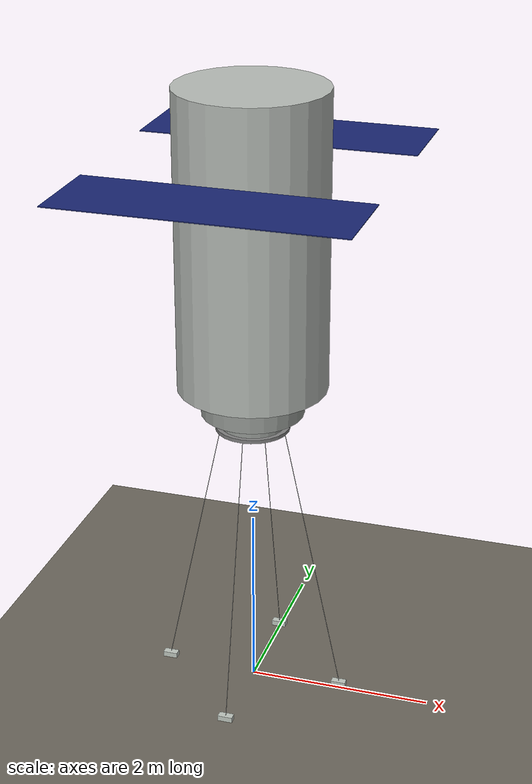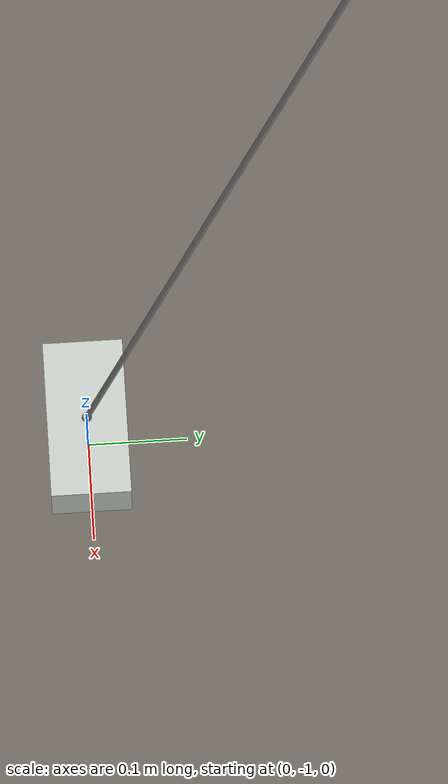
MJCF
<mujoco model="astraant_tethered_landing">

  <compiler angle="degree" coordinate="local"/>
  <option timestep="0.002" gravity="0 0 -9.81">
    <flag contact="enable"/>
  </option>

  <default>
    <geom condim="4" friction="0.6 0.01 0.001"/>
  </default>

  <asset>
    <material name="hull" rgba="0.72 0.74 0.72 1"/>
    <material name="base_cone" rgba="0.60 0.62 0.60 1"/>
    <material name="anchor_ant" rgba="0.75 0.78 0.75 1"/>
    <material name="solar_blue" rgba="0.10 0.15 0.45 1"/>
    <material name="regolith" rgba="0.42 0.40 0.36 1"/>
    <material name="cable" rgba="0.9 0.9 0.2 0.8"/>
  </asset>

  <worldbody>
    <light diffuse="0.9 0.9 0.85" dir="-0.2 -0.3 -1" pos="0 0 10"/>
    <light diffuse="0.3 0.3 0.35" dir="0.5 0.5 -0.3" pos="-5 -5 5"/>

    <!-- Asteroid surface -->
    <geom name="ground" type="plane" size="20 20 0.1"
          material="regolith" friction="0.5 0.01 0.001"
          solref="0.02 0.9" solimp="0.9 0.95 0.001"/>

    <!-- === 4 ANCHOR ANTS (fixed to ground = pre-anchored) === -->
    <!-- Positioned 1.0m out from landing center (wider than mothership) -->
    <body name="anchor_ant_0" pos="1.0 0 0.06">
      <geom name="ant_body_0" type="box" size="0.08 0.04 0.03"
            mass="0.43" material="anchor_ant"
            friction="5.0 0.02 0.005"/>
      <site name="anchor_site_0" pos="0 0 0.03"/>
    </body>

    <body name="anchor_ant_1" pos="0 1.0 0.06">
      <geom name="ant_body_1" type="box" size="0.08 0.04 0.03"
            mass="0.43" material="anchor_ant"
            friction="5.0 0.02 0.005"/>
      <site name="anchor_site_1" pos="0 0 0.03"/>
    </body>

    <body name="anchor_ant_2" pos="-1.0 0 0.06">
      <geom name="ant_body_2" type="box" size="0.08 0.04 0.03"
            mass="0.43" material="anchor_ant"
            friction="5.0 0.02 0.005"/>
      <site name="anchor_site_2" pos="0 0 0.03"/>
    </body>

    <body name="anchor_ant_3" pos="0 -1.0 0.06">
      <geom name="ant_body_3" type="box" size="0.08 0.04 0.03"
            mass="0.43" material="anchor_ant"
            friction="5.0 0.02 0.005"/>
      <site name="anchor_site_3" pos="0 0 0.03"/>
    </body>

    <!-- === MOTHERSHIP (starts 3m above surface) === -->
    <body name="mothership" pos="0 0 4">
      <freejoint name="root"/>
      <camera name="side" pos="6 0 3" xyaxes="0 1 0 -0.3 0 1" mode="track"/>

      <!-- Hull -->
      <geom name="hull" type="cylinder" size="0.8 1.6"
            pos="0 0 1.2" mass="650" material="hull"/>

      <!-- Conical base -->
      <geom name="base_upper" type="cylinder" size="0.75 0.15"
            pos="0 0 -0.25" mass="60" material="base_cone"/>
      <geom name="base_mid" type="cylinder" size="0.55 0.15"
            pos="0 0 -0.55" mass="40" material="base_cone"/>
      <geom name="base_lower" type="cylinder" size="0.35 0.1"
            pos="0 0 -0.75" mass="30" material="base_cone"/>
      <geom name="base_plate" type="cylinder" size="0.40 0.02"
            pos="0 0 -0.87" mass="20" friction="0.8 0.02 0.005"/>

      <!-- Solar panels -->
      <geom name="solar_L" type="box" size="1.5 0.5 0.005"
            pos="0 1.3 2.0" mass="15" material="solar_blue"/>
      <geom name="solar_R" type="box" size="1.5 0.5 0.005"
            pos="0 -1.3 2.0" mass="15" material="solar_blue"/>

      <!-- Cable attachment sites (at base ring, matching anchor positions) -->
      <site name="ship_attach_0" pos="0.35 0 -0.89"/>
      <site name="ship_attach_1" pos="0 0.35 -0.89"/>
      <site name="ship_attach_2" pos="-0.35 0 -0.89"/>
      <site name="ship_attach_3" pos="0 -0.35 -0.89"/>
    </body>
  </worldbody>

  <!-- === TETHER CABLES (spatial tendons) === -->
  <!-- Steel cable + copper power conductors in one sheath -->
  <tendon>
    <spatial name="cable_0" width="0.003" stiffness="50000" damping="500"
             limited="true" range="0 10">
      <site site="ship_attach_0"/>
      <site site="anchor_site_0"/>
    </spatial>
    <spatial name="cable_1" width="0.003" stiffness="50000" damping="500"
             limited="true" range="0 10">
      <site site="ship_attach_1"/>
      <site site="anchor_site_1"/>
    </spatial>
    <spatial name="cable_2" width="0.003" stiffness="50000" damping="500"
             limited="true" range="0 10">
      <site site="ship_attach_2"/>
      <site site="anchor_site_2"/>
    </spatial>
    <spatial name="cable_3" width="0.003" stiffness="50000" damping="500"
             limited="true" range="0 10">
      <site site="ship_attach_3"/>
      <site site="anchor_site_3"/>
    </spatial>
  </tendon>

  <!-- === WINCH ACTUATORS === -->
  <!-- Motor actuators: positive ctrl = tension (pulls endpoints together) -->
  <actuator>
    <motor name="winch_0" tendon="cable_0" ctrlrange="0 200" forcerange="0 200"/>
    <motor name="winch_1" tendon="cable_1" ctrlrange="0 200" forcerange="0 200"/>
    <motor name="winch_2" tendon="cable_2" ctrlrange="0 200" forcerange="0 200"/>
    <motor name="winch_3" tendon="cable_3" ctrlrange="0 200" forcerange="0 200"/>
  </actuator>

  <sensor>
    <framepos name="ship_pos" objtype="body" objname="mothership"/>
    <framequat name="ship_quat" objtype="body" objname="mothership"/>
    <framelinvel name="ship_vel" objtype="body" objname="mothership"/>
    <tendonpos name="cable_0_len" tendon="cable_0"/>
    <tendonpos name="cable_1_len" tendon="cable_1"/>
    <tendonpos name="cable_2_len" tendon="cable_2"/>
    <tendonpos name="cable_3_len" tendon="cable_3"/>
  </sensor>

</mujoco>
